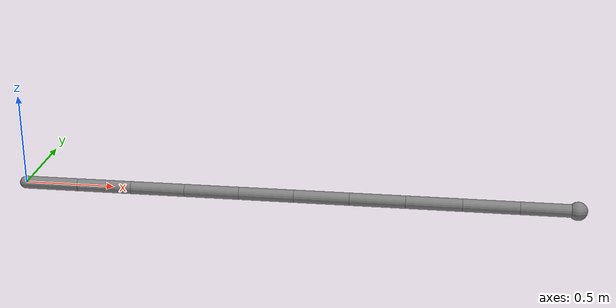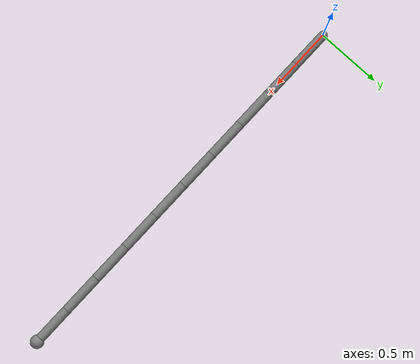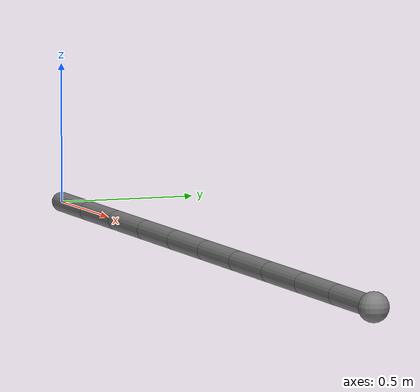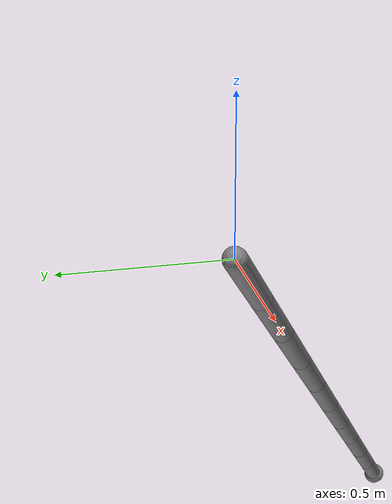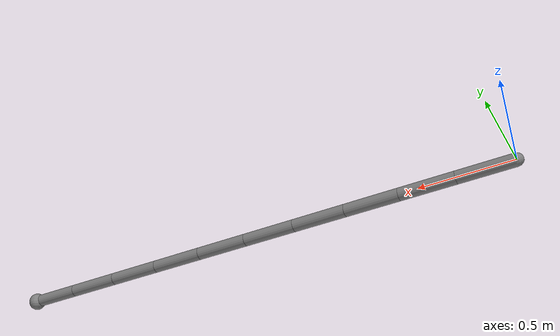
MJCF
<mujoco model="chain">
  <compiler angle="radian"/>
  <option gravity="0 0 0"/>
  <default>
    <joint type="hinge" axis="0 1 0" limited="false"/>
    <geom type="capsule" size="0.035" density="800"/>
  </default>
  <worldbody>
    <body name="link1" pos="0 0 0">
      <joint name="j1"/><geom name="g1" fromto="0 0 0 0.3 0 0"/>
      <body name="link2" pos="0.3 0 0">
        <joint name="j2"/><geom name="g2" fromto="0 0 0 0.3 0 0"/>
        <body name="link3" pos="0.3 0 0">
          <joint name="j3"/><geom name="g3" fromto="0 0 0 0.3 0 0"/>
          <body name="link4" pos="0.3 0 0">
            <joint name="j4"/><geom name="g4" fromto="0 0 0 0.3 0 0"/>
            <body name="link5" pos="0.3 0 0">
              <joint name="j5"/><geom name="g5" fromto="0 0 0 0.3 0 0"/>
              <body name="link6" pos="0.3 0 0">
                <joint name="j6"/><geom name="g6" fromto="0 0 0 0.3 0 0"/>
                <body name="link7" pos="0.3 0 0">
                  <joint name="j7"/><geom name="g7" fromto="0 0 0 0.3 0 0"/>
                  <body name="link8" pos="0.3 0 0">
                    <joint name="j8"/><geom name="g8" fromto="0 0 0 0.3 0 0"/>
                    <body name="link9" pos="0.3 0 0">
                      <joint name="j9"/><geom name="g9" fromto="0 0 0 0.3 0 0"/>
                      <body name="link10" pos="0.3 0 0">
                        <joint name="j10"/><geom name="g10" fromto="0 0 0 0.3 0 0"/>
                        <body name="tip" pos="0.3 0 0">
                          <geom name="gtip" type="sphere" size="0.05"/>
                        </body>
                      </body>
                    </body>
                  </body>
                </body>
              </body>
            </body>
          </body>
        </body>
      </body>
    </body>
  </worldbody>
</mujoco>
